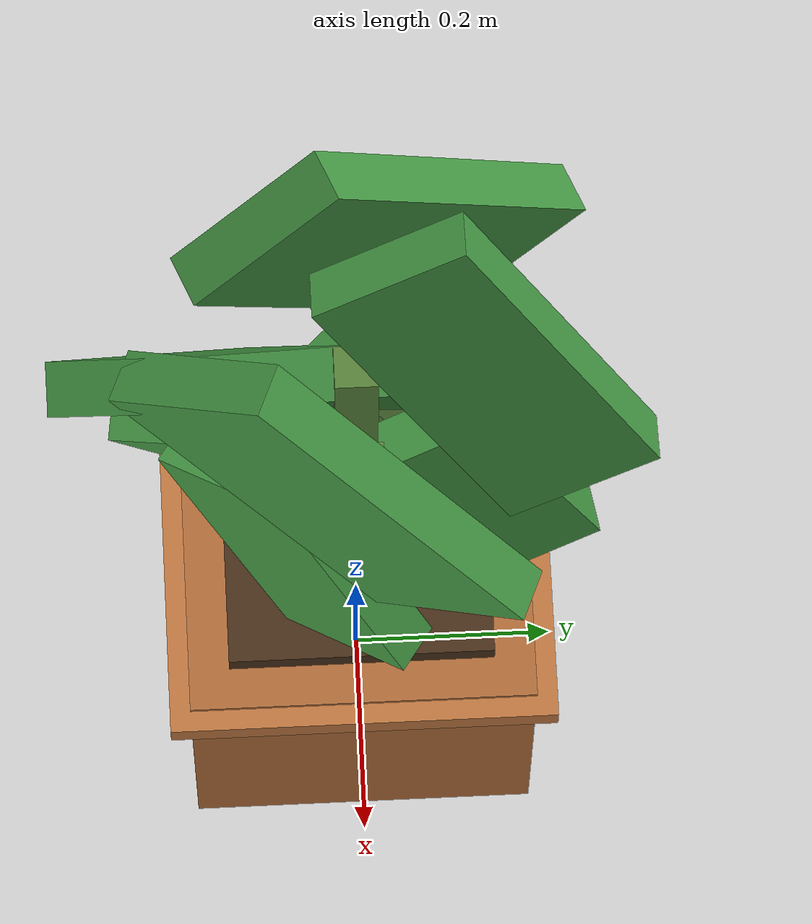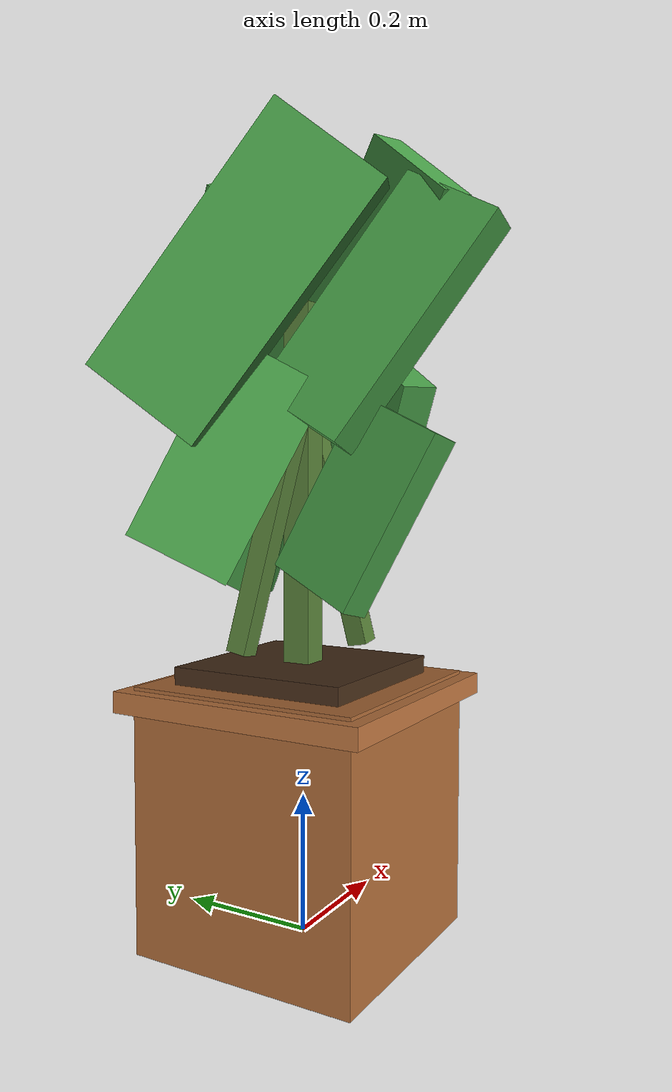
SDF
<?xml version="1.0"?>
<sdf version="1.9">
  <model name="plant">
    <static>true</static>
    <link name="body">

      <collision name="pot_collision">
        <pose>0 0 0.18 0 0 0</pose>
        <geometry><box><size>0.34 0.34 0.38</size></box></geometry>
      </collision>
      <collision name="pot_lip_collision">
        <pose>0 0 0.35 0 0 0</pose>
        <geometry><box><size>0.38 0.38 0.03</size></box></geometry>
      </collision>
      <collision name="stem_main_collision">
        <pose>0 0 0.64 0 0 0</pose>
        <geometry><box><size>0.04 0.04 0.52</size></box></geometry>
      </collision>
      <collision name="stem_left_collision">
        <pose>-0.06 0.02 0.58 0.18 0.14 0</pose>
        <geometry><box><size>0.03 0.03 0.34</size></box></geometry>
      </collision>
      <collision name="stem_right_collision">
        <pose>0.06 -0.02 0.58 -0.18 -0.14 0</pose>
        <geometry><box><size>0.03 0.03 0.34</size></box></geometry>
      </collision>
      <collision name="leaf_left_top_collision">
        <pose>-0.12 0.03 0.92 0.65 0 0.40</pose>
        <geometry><box><size>0.05 0.18 0.42</size></box></geometry>
      </collision>
      <collision name="leaf_right_top_collision">
        <pose>0.12 -0.03 0.92 0.65 0 -0.40</pose>
        <geometry><box><size>0.05 0.18 0.42</size></box></geometry>
      </collision>
      <collision name="leaf_front_top_collision">
        <pose>0 0.12 0.88 0.52 -0.34 0</pose>
        <geometry><box><size>0.05 0.16 0.36</size></box></geometry>
      </collision>
      <collision name="leaf_back_top_collision">
        <pose>0 -0.12 0.88 0.52 0.34 0</pose>
        <geometry><box><size>0.05 0.16 0.36</size></box></geometry>
      </collision>
      <collision name="leaf_left_low_collision">
        <pose>-0.10 0.06 0.68 0.48 0 0.62</pose>
        <geometry><box><size>0.05 0.15 0.30</size></box></geometry>
      </collision>
      <collision name="leaf_right_low_collision">
        <pose>0.10 -0.06 0.68 0.48 0 -0.62</pose>
        <geometry><box><size>0.05 0.15 0.30</size></box></geometry>
      </collision>
      <collision name="leaf_front_low_collision">
        <pose>0.03 0.11 0.62 0.42 -0.22 0.15</pose>
        <geometry><box><size>0.05 0.14 0.26</size></box></geometry>
      </collision>
      <collision name="leaf_back_low_collision">
        <pose>-0.03 -0.11 0.62 0.42 0.22 -0.15</pose>
        <geometry><box><size>0.05 0.14 0.26</size></box></geometry>
      </collision>
      <visual name="pot_visual">
        <pose>0 0 0.18 0 0 0</pose>
        <geometry><box><size>0.34 0.34 0.38</size></box></geometry>
        <material>
          <ambient>0.50 0.31 0.16 1</ambient>
          <diffuse>0.68 0.42 0.22 1</diffuse>
        </material>
      </visual>
      <visual name="pot_lip">
        <pose>0 0 0.35 0 0 0</pose>
        <geometry><box><size>0.38 0.38 0.03</size></box></geometry>
        <material><ambient>0.56 0.35 0.18 1</ambient><diffuse>0.74 0.46 0.25 1</diffuse></material>
      </visual>
      <visual name="soil_visual">
        <pose>0 0 0.38 0 0 0</pose>
        <geometry><box><size>0.26 0.26 0.03</size></box></geometry>
        <material><ambient>0.19 0.12 0.07 1</ambient><diffuse>0.28 0.18 0.10 1</diffuse></material>
      </visual>

      <visual name="stem_main">
        <pose>0 0 0.64 0 0 0</pose>
        <geometry><box><size>0.04 0.04 0.52</size></box></geometry>
        <material><ambient>0.22 0.33 0.15 1</ambient><diffuse>0.34 0.50 0.22 1</diffuse></material>
      </visual>
      <visual name="stem_left">
        <pose>-0.06 0.02 0.58 0.18 0.14 0</pose>
        <geometry><box><size>0.03 0.03 0.34</size></box></geometry>
        <material><ambient>0.22 0.33 0.15 1</ambient><diffuse>0.34 0.50 0.22 1</diffuse></material>
      </visual>
      <visual name="stem_right">
        <pose>0.06 -0.02 0.58 -0.18 -0.14 0</pose>
        <geometry><box><size>0.03 0.03 0.34</size></box></geometry>
        <material><ambient>0.22 0.33 0.15 1</ambient><diffuse>0.34 0.50 0.22 1</diffuse></material>
      </visual>

      <visual name="leaf_left_top">
        <pose>-0.12 0.03 0.92 0.65 0 0.40</pose>
        <geometry><box><size>0.05 0.18 0.42</size></box></geometry>
        <material><ambient>0.18 0.40 0.18 1</ambient><diffuse>0.28 0.62 0.28 1</diffuse></material>
      </visual>
      <visual name="leaf_right_top">
        <pose>0.12 -0.03 0.92 0.65 0 -0.40</pose>
        <geometry><box><size>0.05 0.18 0.42</size></box></geometry>
        <material><ambient>0.18 0.40 0.18 1</ambient><diffuse>0.28 0.62 0.28 1</diffuse></material>
      </visual>
      <visual name="leaf_front_top">
        <pose>0 0.12 0.88 0.52 -0.34 0</pose>
        <geometry><box><size>0.05 0.16 0.36</size></box></geometry>
        <material><ambient>0.18 0.40 0.18 1</ambient><diffuse>0.28 0.62 0.28 1</diffuse></material>
      </visual>
      <visual name="leaf_back_top">
        <pose>0 -0.12 0.88 0.52 0.34 0</pose>
        <geometry><box><size>0.05 0.16 0.36</size></box></geometry>
        <material><ambient>0.18 0.40 0.18 1</ambient><diffuse>0.28 0.62 0.28 1</diffuse></material>
      </visual>
      <visual name="leaf_left_low">
        <pose>-0.10 0.06 0.68 0.48 0 0.62</pose>
        <geometry><box><size>0.05 0.15 0.30</size></box></geometry>
        <material><ambient>0.18 0.40 0.18 1</ambient><diffuse>0.28 0.62 0.28 1</diffuse></material>
      </visual>
      <visual name="leaf_right_low">
        <pose>0.10 -0.06 0.68 0.48 0 -0.62</pose>
        <geometry><box><size>0.05 0.15 0.30</size></box></geometry>
        <material><ambient>0.18 0.40 0.18 1</ambient><diffuse>0.28 0.62 0.28 1</diffuse></material>
      </visual>
      <visual name="leaf_front_low">
        <pose>0.03 0.11 0.62 0.42 -0.22 0.15</pose>
        <geometry><box><size>0.05 0.14 0.26</size></box></geometry>
        <material><ambient>0.18 0.40 0.18 1</ambient><diffuse>0.28 0.62 0.28 1</diffuse></material>
      </visual>
      <visual name="leaf_back_low">
        <pose>-0.03 -0.11 0.62 0.42 0.22 -0.15</pose>
        <geometry><box><size>0.05 0.14 0.26</size></box></geometry>
        <material><ambient>0.18 0.40 0.18 1</ambient><diffuse>0.28 0.62 0.28 1</diffuse></material>
      </visual>

    </link>
  </model>
</sdf>
